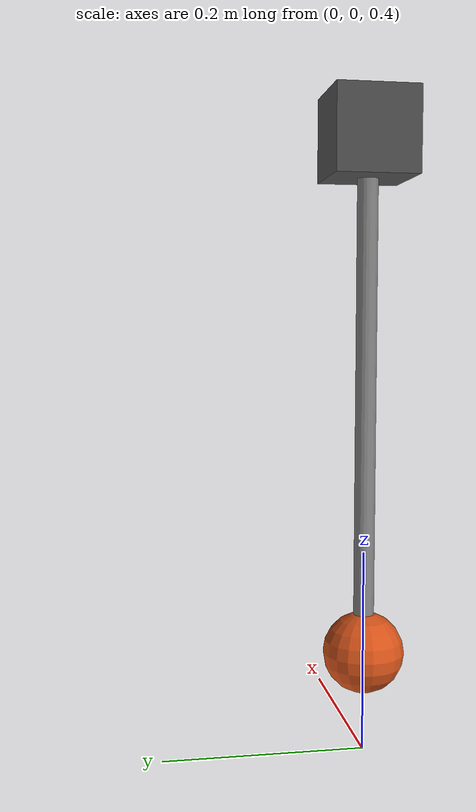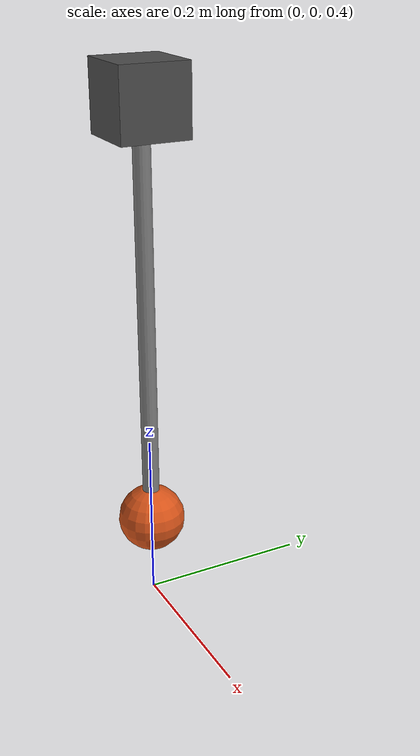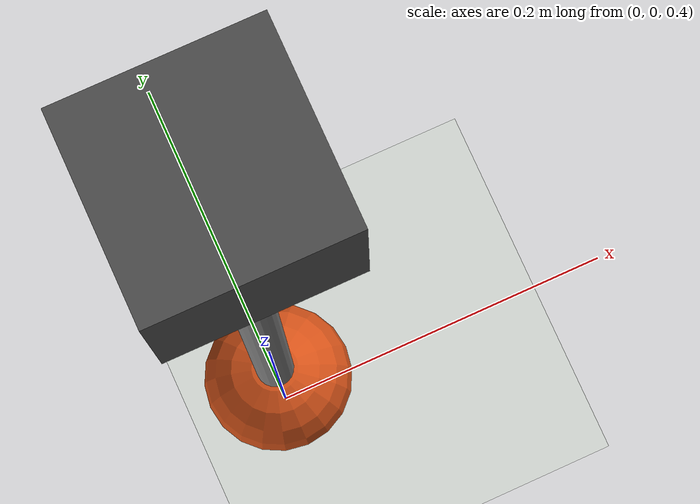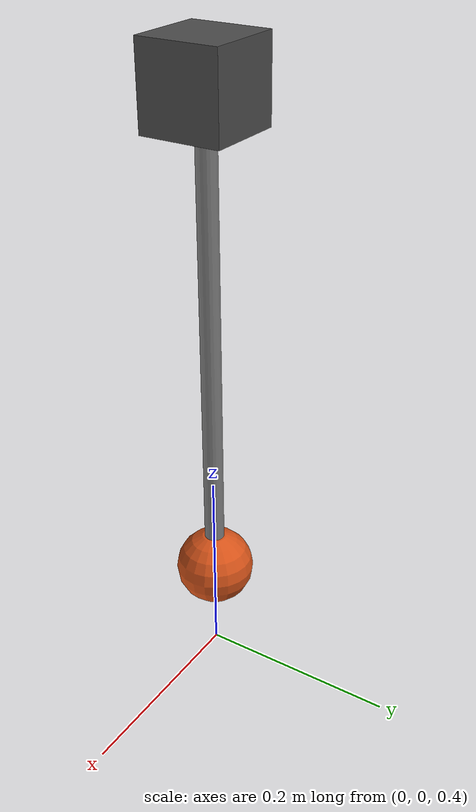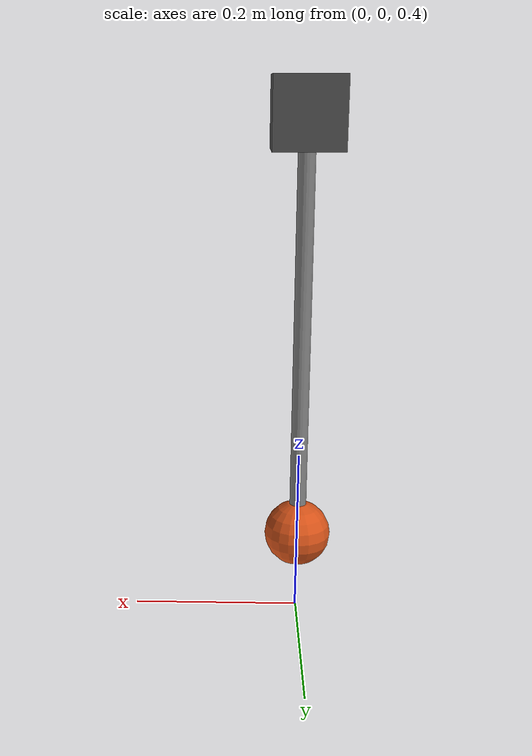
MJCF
<mujoco model="pendulum_servo">
  <compiler angle="radian" autolimits="true"/>
  <option timestep="0.002"/>

  <default>
    <default class="visual">
      <geom contype="0" conaffinity="0" group="1"/>
    </default>
  </default>

  <worldbody>
    <light pos="0 -1 2" dir="0 1 -2"/>
    <geom name="floor" type="plane" size="1 1 0.05" pos="0 0 -0.2" rgba=".85 .87 .85 1"/>
    <geom name="mount" class="visual" type="box" size="0.04 0.04 0.04" pos="0 0 1" rgba=".3 .3 .3 1"/>

    <body name="pole" pos="0 0 1">
      <!-- Hinge about the world +y axis. By the right-hand rule, positive q
           carries the bob from (0, 0, -L) toward (-L sin q, 0, -L cos q), i.e. toward -x. -->
      <joint name="hinge" type="hinge" axis="0 1 0" damping="0"/>
      <inertial pos="0 0 -0.5" mass="1.0" diaginertia="1e-4 1e-4 1e-4"/>
      <geom name="rod" class="visual" type="capsule" fromto="0 0 0 0 0 -0.5" size="0.01" rgba=".5 .5 .5 1"/>
      <geom name="bob" class="visual" type="sphere" pos="0 0 -0.5" size="0.04" rgba=".85 .33 .1 1"/>
      <site name="tip" pos="0 0 -0.5" size="0.005"/>
    </body>
  </worldbody>

  <actuator>
    <!-- Position servo: ctrl is the target angle in rad. No forcerange: the
         servo can apply any torque, so instability comes from integration alone. -->
    <position name="servo" joint="hinge" kp="100" kv="5"/>
  </actuator>

  <sensor>
    <jointpos name="angle" joint="hinge"/>
    <jointvel name="angvel" joint="hinge"/>
  </sensor>

  <keyframe>
    <key name="horizontal" qpos="1.5707963"/>
    <key name="small" qpos="0.2"/>
  </keyframe>
</mujoco>
